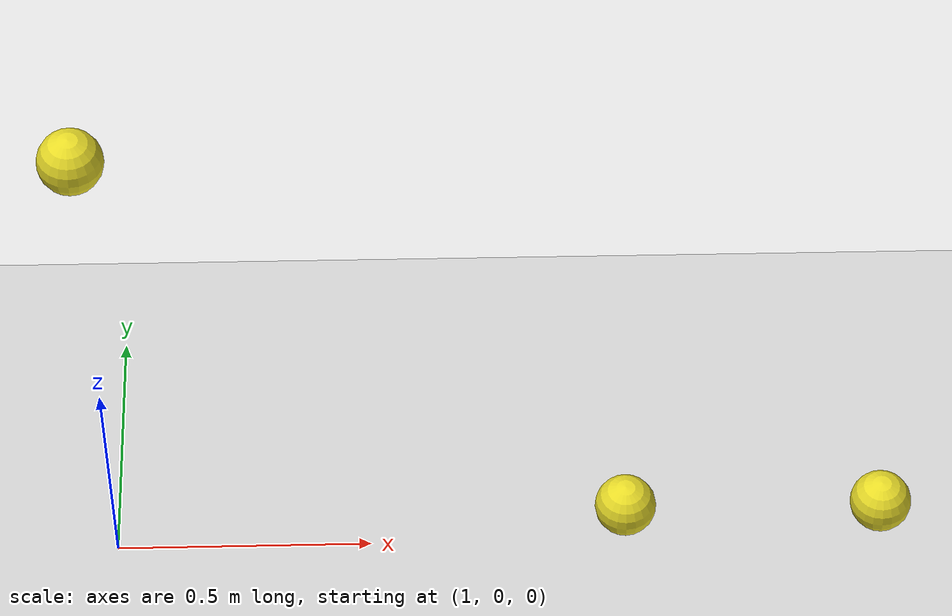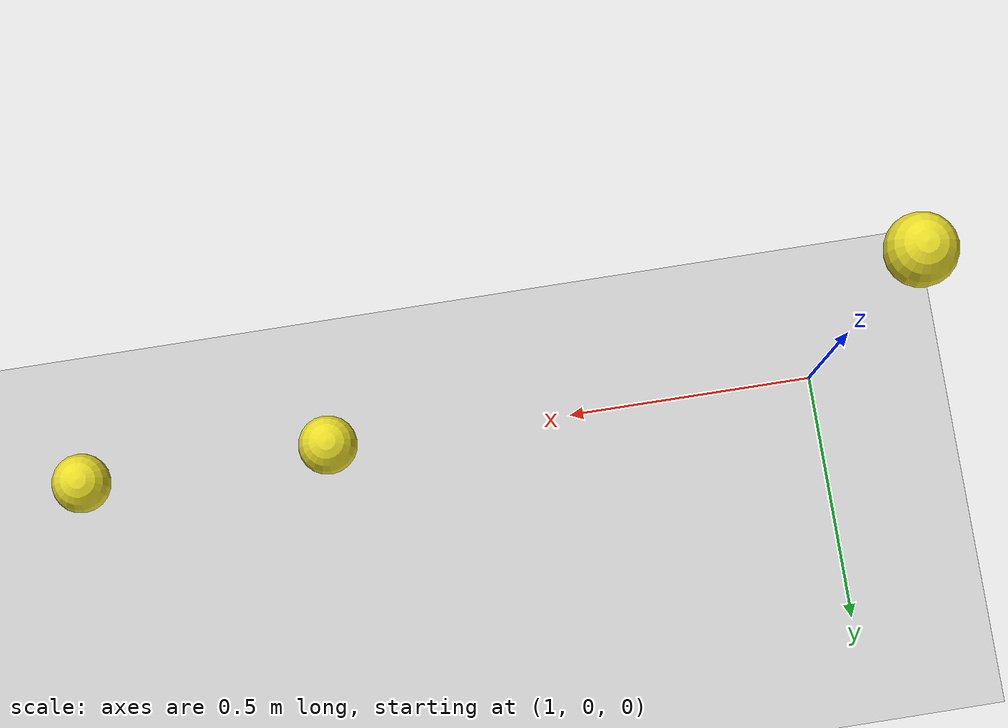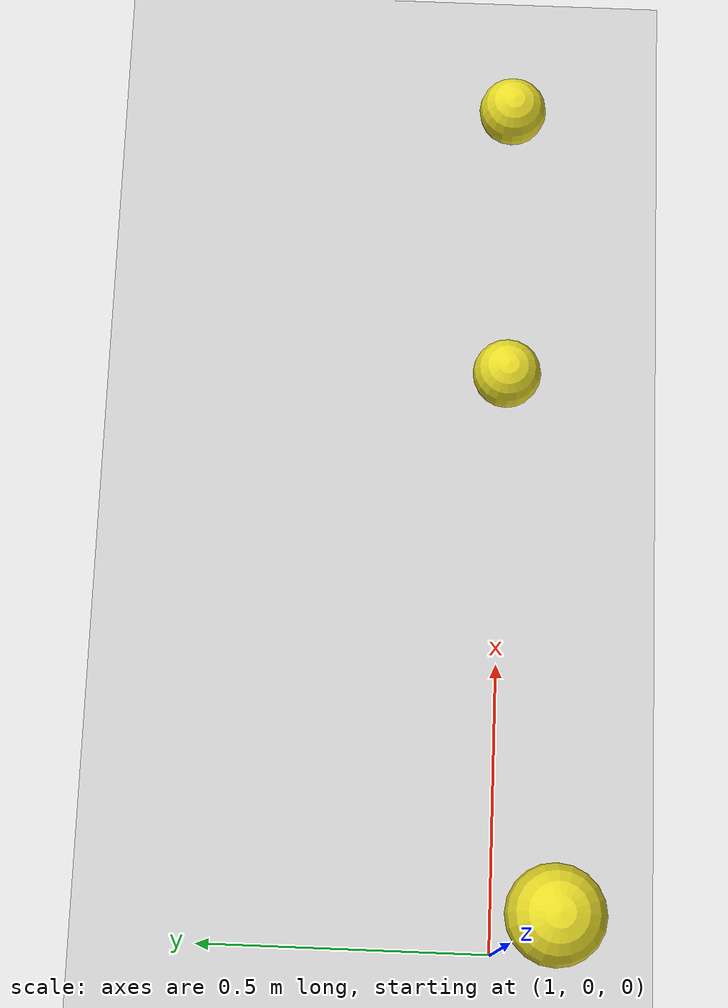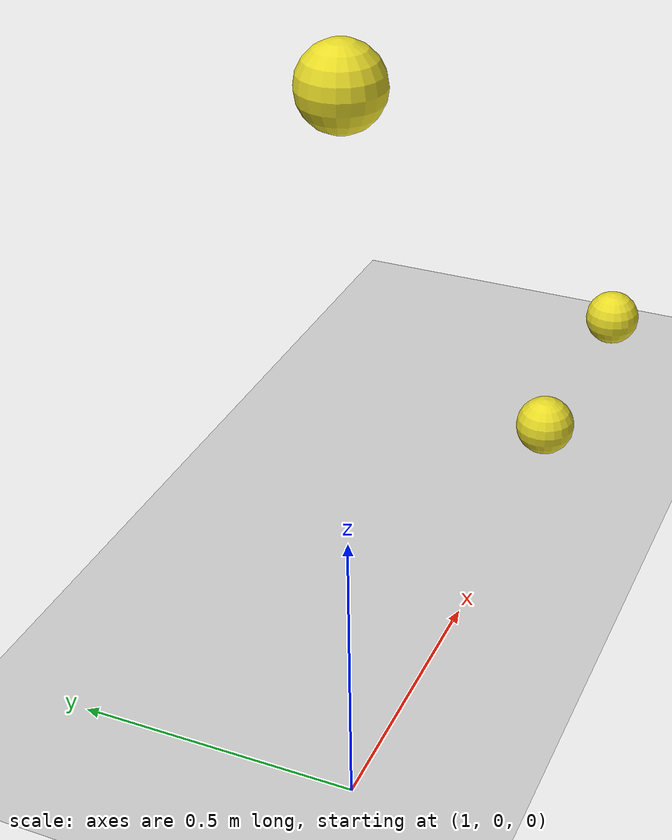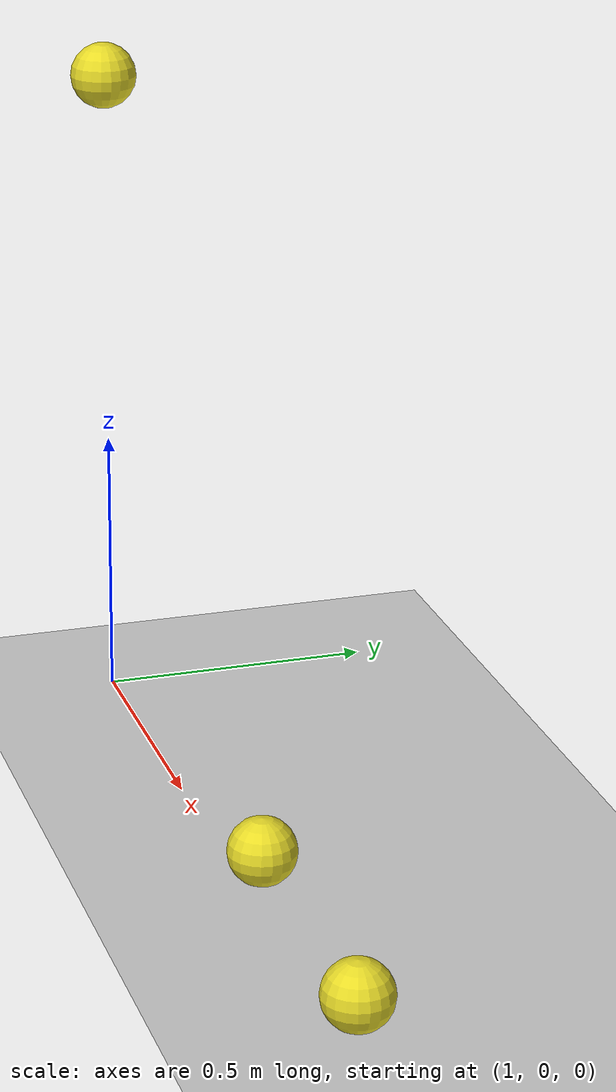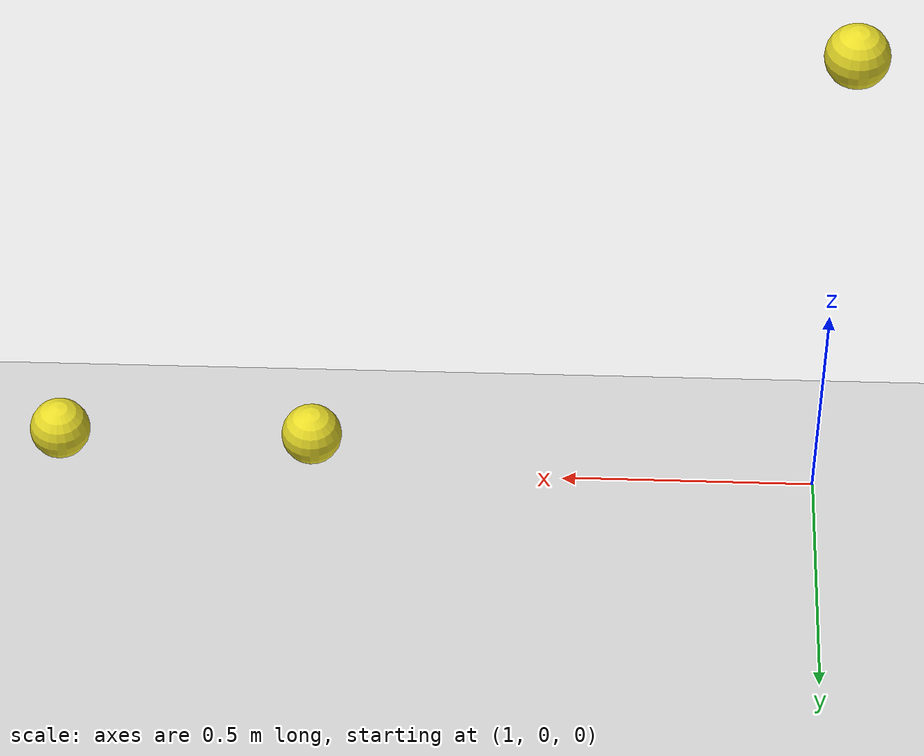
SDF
<?xml version="1.0"?>
<sdf version="1.5">
  <world name="puzzle_world">
    <scene>
      <sky>
        <clouds>
          <speed>12.0</speed>
        </clouds>
      </sky>
      <shadows>true</shadows>
      <grid>false</grid>
      <origin_visual>false</origin_visual>
    </scene>

    <physics type="ode">
      <max_step_size>0.004</max_step_size>
      <real_time_factor>1</real_time_factor>
      <real_time_update_rate>250</real_time_update_rate>
      <max_contacts>10</max_contacts>
      <magnetic_field>6.0e-6 2.3e-5 -4.2e-5</magnetic_field>
      <ode>
        <solver>
          <type>quick</type>
          <iters>10</iters>
          <sor>1.3</sor>
          <use_dynamic_moi_rescaling>0</use_dynamic_moi_rescaling>
        </solver>
        <constraints>
          <cfm>0</cfm>
          <erp>0.2</erp>
          <contact_max_correcting_vel>100</contact_max_correcting_vel>
          <contact_surface_layer>0.001</contact_surface_layer>
        </constraints>
      </ode>
    </physics>

    <!-- A global light source -->
    <include>
      <uri>model://sun</uri>
    </include>
    <!-- A ground plane -->
    <include>
      <uri>model://ground_plane</uri>
    </include>
    <include>
      <uri>model://asphalt_plane</uri>
    </include>

    <include>
      <uri>model://olive</uri>
      <name>olive1</name>
      <pose>1 0 1.2 0 0 0</pose>
      <static>true</static>
    </include>

    <include>
      <uri>model://olive</uri>
      <name>olive2</name>
      <pose>2 0 0.12 0 0 0</pose>
      <static>true</static>
    </include>

    <include>
      <uri>model://olive</uri>
      <name>olive3</name>
      <pose>2.5 0 0.12 0 0 0</pose>
      <static>true</static>
    </include>
  </world>
</sdf>

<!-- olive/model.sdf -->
<sdf version='1.7'>
  <model name="olive">
    <static>0</static>
    <allow_auto_disable>1</allow_auto_disable>
    <pose>0 0 0.12 0 0 0</pose>
    <link name="main">
      <pose>0 0 0 0 0 0</pose>
      <self_collide>0</self_collide>
      <inertial>
        <pose>0 0 0 0 0 0</pose>
        <inertia>
          <ixx>.05</ixx>
          <ixy>0</ixy>
          <ixz>0</ixz>
          <iyy>.05</iyy>
          <iyz>0</iyz>
          <izz>.05</izz>
        </inertia>
        <mass>.03</mass>
      </inertial>
      <enable_wind>0</enable_wind>
      <kinematic>0</kinematic>
      <visual name="main_visual">
        <geometry>
          <sphere>
            <radius>.06</radius>
          </sphere>
        </geometry>
        <material>
          <script>
            <uri>file://media/materials/scripts/gazebo.material</uri>
            <name>Gazebo/Yellow</name>
          </script>
        </material>
        <pose>0 0 0 0 0 0</pose>
        <transparency>0</transparency>
        <cast_shadows>0</cast_shadows>
      </visual>
      <collision name='main_collision'>
        <laser_retro>0</laser_retro>
        <max_contacts>10</max_contacts>
        <pose>0 0 0 0 0 0</pose>
        <geometry>
          <sphere>
            <radius>.06</radius>
          </sphere>
        </geometry>
      </collision>
    </link>

    <plugin name="BulletPlugin" filename="libBulletPlugin.so"/>
  </model>
</sdf>
